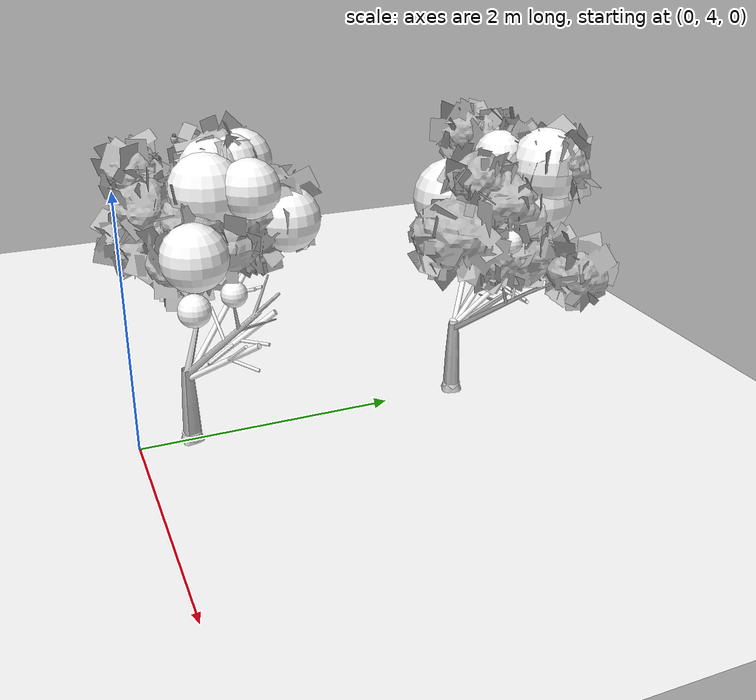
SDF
<sdf version="1.11">
 <world name="peach_orchard">
  <model name="ground">
   <static>true</static>
   <link name="link">
    <visual name="soil">
     <geometry><plane><normal>0 0 1</normal><size>32 22</size></plane></geometry>
     <material>
      <ambient>1 1 1 1</ambient>
      <diffuse>1 1 1 1</diffuse>
      <specular>0.1 0.1 0.1 1</specular>
      <pbr>
       <metal>
        <albedo_map>textures/soil_albedo.png</albedo_map>
        <normal_map type="tangent">textures/soil_normal.png</normal_map>
        <roughness>0.95</roughness>
        <metalness>0</metalness>
       </metal>
      </pbr>
     </material>
    </visual>
    <collision name="c_soil">
     <geometry><plane><normal>0 0 1</normal><size>32 22</size></plane></geometry>
    </collision>
   </link>
  </model>
  <model name="tree_r2_t5">
   <pose>0 4.4 0 0 0 0</pose>
   <static>true</static>
   <link name="link">
    <visual name="tree_mesh">
     <pose>0 0 0 0 0 0.208084</pose>
     <geometry>
      <mesh><uri>model://peach_sim/meshes/peach_tree_b.glb</uri><scale>1.03697 1.03697 1.03697</scale></mesh>
     </geometry>
    </visual>
    <visual name="trunk_0">
     <pose>0 0 0.154275 0 0 0</pose>
     <geometry><cylinder><radius>0.0512341</radius><length>0.308549</length></cylinder></geometry>
     <material>
      <ambient>1 1 1 1</ambient>
      <diffuse>1 1 1 1</diffuse>
      <specular>0.1 0.1 0.1 1</specular>
      <pbr>
       <metal>
        <albedo_map>textures/bark_albedo.png</albedo_map>
        <normal_map type="tangent">textures/bark_normal.png</normal_map>
        <roughness>0.9</roughness>
        <metalness>0</metalness>
       </metal>
      </pbr>
     </material>
    </visual>
    <collision name="c_trunk_0">
     <pose>0 0 0.154275 0 0 0</pose>
     <geometry><cylinder><radius>0.0512341</radius><length>0.308549</length></cylinder></geometry>
    </collision>
    <visual name="trunk_1">
     <pose>0 0 0.434774 0 0 0</pose>
     <geometry><cylinder><radius>0.0368885</radius><length>0.252449</length></cylinder></geometry>
     <material>
      <ambient>1 1 1 1</ambient>
      <diffuse>1 1 1 1</diffuse>
      <specular>0.1 0.1 0.1 1</specular>
      <pbr>
       <metal>
        <albedo_map>textures/bark_albedo.png</albedo_map>
        <normal_map type="tangent">textures/bark_normal.png</normal_map>
        <roughness>0.9</roughness>
        <metalness>0</metalness>
       </metal>
      </pbr>
     </material>
    </visual>
    <collision name="c_trunk_1">
     <pose>0 0 0.434774 0 0 0</pose>
     <geometry><cylinder><radius>0.0368885</radius><length>0.252449</length></cylinder></geometry>
    </collision>
    <visual name="root_flare">
     <pose>0 0 0.035 0 0 0</pose>
     <geometry><cylinder><radius>0.0742894</radius><length>0.07</length></cylinder></geometry>
     <material>
      <ambient>1 1 1 1</ambient>
      <diffuse>1 1 1 1</diffuse>
      <specular>0.1 0.1 0.1 1</specular>
      <pbr>
       <metal>
        <albedo_map>textures/bark_albedo.png</albedo_map>
        <normal_map type="tangent">textures/bark_normal.png</normal_map>
        <roughness>0.95</roughness>
        <metalness>0</metalness>
       </metal>
      </pbr>
     </material>
    </visual>
    <visual name="scaffold_0">
     <pose>0.114899 0.31561 0.784827 0 0.896039 1.22166</pose>
     <geometry><cylinder><radius>0.022</radius><length>0.860268</length></cylinder></geometry>
     <material>
      <ambient>1 1 1 1</ambient>
      <diffuse>1 1 1 1</diffuse>
      <specular>0.1 0.1 0.1 1</specular>
      <pbr>
       <metal>
        <albedo_map>textures/bark_albedo.png</albedo_map>
        <normal_map type="tangent">textures/bark_normal.png</normal_map>
        <roughness>0.9</roughness>
        <metalness>0</metalness>
       </metal>
      </pbr>
     </material>
    </visual>
    <collision name="c_scaffold_0">
     <pose>0.114899 0.31561 0.784827 0 0.896039 1.22166</pose>
     <geometry><cylinder><radius>0.022</radius><length>0.860268</length></cylinder></geometry>
    </collision>
    <visual name="branchlet_0_0">
     <pose>0.245716 0.456043 0.848523 0 1.45494 0.653646</pose>
     <geometry><cylinder><radius>0.012</radius><length>0.280281</length></cylinder></geometry>
     <material>
      <ambient>1 1 1 1</ambient>
      <diffuse>1 1 1 1</diffuse>
      <specular>0.1 0.1 0.1 1</specular>
      <pbr>
       <metal>
        <albedo_map>textures/bark_albedo.png</albedo_map>
        <normal_map type="tangent">textures/bark_normal.png</normal_map>
        <roughness>0.9</roughness>
        <metalness>0</metalness>
       </metal>
      </pbr>
     </material>
    </visual>
    <visual name="branchlet_0_1">
     <pose>-0.00888254 0.264138 0.888353 0 0.75606 -2.91475</pose>
     <geometry><cylinder><radius>0.012</radius><length>0.343103</length></cylinder></geometry>
     <material>
      <ambient>1 1 1 1</ambient>
      <diffuse>1 1 1 1</diffuse>
      <specular>0.1 0.1 0.1 1</specular>
      <pbr>
       <metal>
        <albedo_map>textures/bark_albedo.png</albedo_map>
        <normal_map type="tangent">textures/bark_normal.png</normal_map>
        <roughness>0.9</roughness>
        <metalness>0</metalness>
       </metal>
      </pbr>
     </material>
    </visual>
    <visual name="branchlet_0_2">
     <pose>0.179982 0.23026 0.769166 0 1.86348 -1.1047</pose>
     <geometry><cylinder><radius>0.012</radius><length>0.259291</length></cylinder></geometry>
     <material>
      <ambient>1 1 1 1</ambient>
      <diffuse>1 1 1 1</diffuse>
      <specular>0.1 0.1 0.1 1</specular>
      <pbr>
       <metal>
        <albedo_map>textures/bark_albedo.png</albedo_map>
        <normal_map type="tangent">textures/bark_normal.png</normal_map>
        <roughness>0.9</roughness>
        <metalness>0</metalness>
       </metal>
      </pbr>
     </material>
    </visual>
    <visual name="scaffold_1">
     <pose>0.23358 0.217598 0.719428 0 1.00371 0.74999</pose>
     <geometry><cylinder><radius>0.022</radius><length>0.75695</length></cylinder></geometry>
     <material>
      <ambient>1 1 1 1</ambient>
      <diffuse>1 1 1 1</diffuse>
      <specular>0.1 0.1 0.1 1</specular>
      <pbr>
       <metal>
        <albedo_map>textures/bark_albedo.png</albedo_map>
        <normal_map type="tangent">textures/bark_normal.png</normal_map>
        <roughness>0.9</roughness>
        <metalness>0</metalness>
       </metal>
      </pbr>
     </material>
    </visual>
    <collision name="c_scaffold_1">
     <pose>0.23358 0.217598 0.719428 0 1.00371 0.74999</pose>
     <geometry><cylinder><radius>0.022</radius><length>0.75695</length></cylinder></geometry>
    </collision>
    <visual name="branchlet_1_0">
     <pose>0.37931 0.346648 0.748408 0 1.70031 0.710348</pose>
     <geometry><cylinder><radius>0.012</radius><length>0.249804</length></cylinder></geometry>
     <material>
      <ambient>1 1 1 1</ambient>
      <diffuse>1 1 1 1</diffuse>
      <specular>0.1 0.1 0.1 1</specular>
      <pbr>
       <metal>
        <albedo_map>textures/bark_albedo.png</albedo_map>
        <normal_map type="tangent">textures/bark_normal.png</normal_map>
        <roughness>0.9</roughness>
        <metalness>0</metalness>
       </metal>
      </pbr>
     </material>
    </visual>
    <visual name="branchlet_1_1">
     <pose>0.390476 0.28919 0.8517 0 0.899858 0.318317</pose>
     <geometry><cylinder><radius>0.012</radius><length>0.332998</length></cylinder></geometry>
     <material>
      <ambient>1 1 1 1</ambient>
      <diffuse>1 1 1 1</diffuse>
      <specular>0.1 0.1 0.1 1</specular>
      <pbr>
       <metal>
        <albedo_map>textures/bark_albedo.png</albedo_map>
        <normal_map type="tangent">textures/bark_normal.png</normal_map>
        <roughness>0.9</roughness>
        <metalness>0</metalness>
       </metal>
      </pbr>
     </material>
    </visual>
    <visual name="scaffold_2">
     <pose>-0.181094 0.286132 0.837022 0 0.812261 2.13506</pose>
     <geometry><cylinder><radius>0.022</radius><length>0.93305</length></cylinder></geometry>
     <material>
      <ambient>1 1 1 1</ambient>
      <diffuse>1 1 1 1</diffuse>
      <specular>0.1 0.1 0.1 1</specular>
      <pbr>
       <metal>
        <albedo_map>textures/bark_albedo.png</albedo_map>
        <normal_map type="tangent">textures/bark_normal.png</normal_map>
        <roughness>0.9</roughness>
        <metalness>0</metalness>
       </metal>
      </pbr>
     </material>
    </visual>
    <collision name="c_scaffold_2">
     <pose>-0.181094 0.286132 0.837022 0 0.812261 2.13506</pose>
     <geometry><cylinder><radius>0.022</radius><length>0.93305</length></cylinder></geometry>
    </collision>
    <visual name="branchlet_2_0">
     <pose>-0.217082 0.545462 1.0607 0 1.22594 0.974595</pose>
     <geometry><cylinder><radius>0.012</radius><length>0.250936</length></cylinder></geometry>
     <material>
      <ambient>1 1 1 1</ambient>
      <diffuse>1 1 1 1</diffuse>
      <specular>0.1 0.1 0.1 1</specular>
      <pbr>
       <metal>
        <albedo_map>textures/bark_albedo.png</albedo_map>
        <normal_map type="tangent">textures/bark_normal.png</normal_map>
        <roughness>0.9</roughness>
        <metalness>0</metalness>
       </metal>
      </pbr>
     </material>
    </visual>
    <visual name="branchlet_2_1">
     <pose>-0.2083 0.519792 1.06343 0 1.22884 0.677806</pose>
     <geometry><cylinder><radius>0.012</radius><length>0.21788</length></cylinder></geometry>
     <material>
      <ambient>1 1 1 1</ambient>
      <diffuse>1 1 1 1</diffuse>
      <specular>0.1 0.1 0.1 1</specular>
      <pbr>
       <metal>
        <albedo_map>textures/bark_albedo.png</albedo_map>
        <normal_map type="tangent">textures/bark_normal.png</normal_map>
        <roughness>0.9</roughness>
        <metalness>0</metalness>
       </metal>
      </pbr>
     </material>
    </visual>
    <visual name="canopy_0">
     <pose>-0.0274209 0.432641 2.11822 0 0 0</pose>
     <geometry><sphere><radius>0.195027</radius></sphere></geometry>
     <material>
      <ambient>1 1 1 1</ambient>
      <diffuse>1 1 1 1</diffuse>
      <specular>0.1 0.1 0.1 1</specular>
      <pbr>
       <metal>
        <albedo_map>textures/leaf_albedo.png</albedo_map>
        <normal_map type="tangent">textures/leaf_normal.png</normal_map>
        <roughness>0.85</roughness>
        <metalness>0</metalness>
       </metal>
      </pbr>
     </material>
    </visual>
    <collision name="c_canopy_0">
     <pose>-0.0274209 0.432641 2.11822 0 0 0</pose>
     <geometry><sphere><radius>0.195027</radius></sphere></geometry>
    </collision>
    <visual name="canopy_1">
     <pose>0.47267 0.0269717 1.63754 0 0 0</pose>
     <geometry><sphere><radius>0.232433</radius></sphere></geometry>
     <material>
      <ambient>1 1 1 1</ambient>
      <diffuse>1 1 1 1</diffuse>
      <specular>0.1 0.1 0.1 1</specular>
      <pbr>
       <metal>
        <albedo_map>textures/leaf_albedo.png</albedo_map>
        <normal_map type="tangent">textures/leaf_normal.png</normal_map>
        <roughness>0.85</roughness>
        <metalness>0</metalness>
       </metal>
      </pbr>
     </material>
    </visual>
    <collision name="c_canopy_1">
     <pose>0.47267 0.0269717 1.63754 0 0 0</pose>
     <geometry><sphere><radius>0.232433</radius></sphere></geometry>
    </collision>
    <visual name="canopy_2">
     <pose>-0.131589 0.526864 2.10124 0 0 0</pose>
     <geometry><sphere><radius>0.219924</radius></sphere></geometry>
     <material>
      <ambient>1 1 1 1</ambient>
      <diffuse>1 1 1 1</diffuse>
      <specular>0.1 0.1 0.1 1</specular>
      <pbr>
       <metal>
        <albedo_map>textures/leaf_albedo.png</albedo_map>
        <normal_map type="tangent">textures/leaf_normal.png</normal_map>
        <roughness>0.85</roughness>
        <metalness>0</metalness>
       </metal>
      </pbr>
     </material>
    </visual>
    <collision name="c_canopy_2">
     <pose>-0.131589 0.526864 2.10124 0 0 0</pose>
     <geometry><sphere><radius>0.219924</radius></sphere></geometry>
    </collision>
    <visual name="canopy_3">
     <pose>0.329182 0.461679 2.0199 0 0 0</pose>
     <geometry><sphere><radius>0.206105</radius></sphere></geometry>
     <material>
      <ambient>1 1 1 1</ambient>
      <diffuse>1 1 1 1</diffuse>
      <specular>0.1 0.1 0.1 1</specular>
      <pbr>
       <metal>
        <albedo_map>textures/leaf_albedo.png</albedo_map>
        <normal_map type="tangent">textures/leaf_normal.png</normal_map>
        <roughness>0.85</roughness>
        <metalness>0</metalness>
       </metal>
      </pbr>
     </material>
    </visual>
    <visual name="canopy_4">
     <pose>0.0462458 0.290001 1.81858 0 0 0</pose>
     <geometry><sphere><radius>0.199953</radius></sphere></geometry>
     <material>
      <ambient>1 1 1 1</ambient>
      <diffuse>1 1 1 1</diffuse>
      <specular>0.1 0.1 0.1 1</specular>
      <pbr>
       <metal>
        <albedo_map>textures/leaf_albedo.png</albedo_map>
        <normal_map type="tangent">textures/leaf_normal.png</normal_map>
        <roughness>0.85</roughness>
        <metalness>0</metalness>
       </metal>
      </pbr>
     </material>
    </visual>
    <visual name="canopy_5">
     <pose>-0.27952 0.840801 1.56179 0 0 0</pose>
     <geometry><sphere><radius>0.230705</radius></sphere></geometry>
     <material>
      <ambient>1 1 1 1</ambient>
      <diffuse>1 1 1 1</diffuse>
      <specular>0.1 0.1 0.1 1</specular>
      <pbr>
       <metal>
        <albedo_map>textures/leaf_albedo.png</albedo_map>
        <normal_map type="tangent">textures/leaf_normal.png</normal_map>
        <roughness>0.85</roughness>
        <metalness>0</metalness>
       </metal>
      </pbr>
     </material>
    </visual>
    <visual name="canopy_6">
     <pose>0.0162726 0.266887 2.09601 0 0 0</pose>
     <geometry><sphere><radius>0.216276</radius></sphere></geometry>
     <material>
      <ambient>1 1 1 1</ambient>
      <diffuse>1 1 1 1</diffuse>
      <specular>0.1 0.1 0.1 1</specular>
      <pbr>
       <metal>
        <albedo_map>textures/leaf_albedo.png</albedo_map>
        <normal_map type="tangent">textures/leaf_normal.png</normal_map>
        <roughness>0.85</roughness>
        <metalness>0</metalness>
       </metal>
      </pbr>
     </material>
    </visual>
    <visual name="canopy_7">
     <pose>0.16392 0.200927 1.98785 0 0 0</pose>
     <geometry><sphere><radius>0.26481</radius></sphere></geometry>
     <material>
      <ambient>1 1 1 1</ambient>
      <diffuse>1 1 1 1</diffuse>
      <specular>0.1 0.1 0.1 1</specular>
      <pbr>
       <metal>
        <albedo_map>textures/leaf_albedo.png</albedo_map>
        <normal_map type="tangent">textures/leaf_normal.png</normal_map>
        <roughness>0.85</roughness>
        <metalness>0</metalness>
       </metal>
      </pbr>
     </material>
    </visual>
    <visual name="canopy_8">
     <pose>-0.11533 0.19106 1.68759 0 0 0</pose>
     <geometry><sphere><radius>0.2632</radius></sphere></geometry>
     <material>
      <ambient>1 1 1 1</ambient>
      <diffuse>1 1 1 1</diffuse>
      <specular>0.1 0.1 0.1 1</specular>
      <pbr>
       <metal>
        <albedo_map>textures/leaf_albedo.png</albedo_map>
        <normal_map type="tangent">textures/leaf_normal.png</normal_map>
        <roughness>0.85</roughness>
        <metalness>0</metalness>
       </metal>
      </pbr>
     </material>
    </visual>
    <visual name="canopy_9">
     <pose>0.0852625 0.791341 1.69689 0 0 0</pose>
     <geometry><sphere><radius>0.238227</radius></sphere></geometry>
     <material>
      <ambient>1 1 1 1</ambient>
      <diffuse>1 1 1 1</diffuse>
      <specular>0.1 0.1 0.1 1</specular>
      <pbr>
       <metal>
        <albedo_map>textures/leaf_albedo.png</albedo_map>
        <normal_map type="tangent">textures/leaf_normal.png</normal_map>
        <roughness>0.85</roughness>
        <metalness>0</metalness>
       </metal>
      </pbr>
     </material>
    </visual>
    <visual name="foliage_0">
     <pose>0.247947 0.330712 1.24497 0 0 0</pose>
     <geometry><sphere><radius>0.0950778</radius></sphere></geometry>
     <material>
      <ambient>1 1 1 1</ambient>
      <diffuse>1 1 1 1</diffuse>
      <specular>0.1 0.1 0.1 1</specular>
      <pbr>
       <metal>
        <albedo_map>textures/leaf_albedo.png</albedo_map>
        <normal_map type="tangent">textures/leaf_normal.png</normal_map>
        <roughness>0.85</roughness>
        <metalness>0</metalness>
       </metal>
      </pbr>
     </material>
    </visual>
    <visual name="foliage_4">
     <pose>0.450729 0.00491466 1.25365 0 0 0</pose>
     <geometry><sphere><radius>0.116424</radius></sphere></geometry>
     <material>
      <ambient>1 1 1 1</ambient>
      <diffuse>1 1 1 1</diffuse>
      <specular>0.1 0.1 0.1 1</specular>
      <pbr>
       <metal>
        <albedo_map>textures/leaf_albedo.png</albedo_map>
        <normal_map type="tangent">textures/leaf_normal.png</normal_map>
        <roughness>0.85</roughness>
        <metalness>0</metalness>
       </metal>
      </pbr>
     </material>
    </visual>
    <visual name="twig_0">
     <pose>0.126449 0.249184 1.40485 0 0.637495 -2.8143</pose>
     <geometry><cylinder><radius>0.007</radius><length>0.166353</length></cylinder></geometry>
     <material>
      <ambient>1 1 1 1</ambient>
      <diffuse>1 1 1 1</diffuse>
      <specular>0.1 0.1 0.1 1</specular>
      <pbr>
       <metal>
        <albedo_map>textures/bark_albedo.png</albedo_map>
        <normal_map type="tangent">textures/bark_normal.png</normal_map>
        <roughness>0.9</roughness>
        <metalness>0</metalness>
       </metal>
      </pbr>
     </material>
    </visual>
    <visual name="twig_1">
     <pose>0.202006 0.107373 1.36732 0 0.635153 -2.89856</pose>
     <geometry><cylinder><radius>0.007</radius><length>0.100088</length></cylinder></geometry>
     <material>
      <ambient>1 1 1 1</ambient>
      <diffuse>1 1 1 1</diffuse>
      <specular>0.1 0.1 0.1 1</specular>
      <pbr>
       <metal>
        <albedo_map>textures/bark_albedo.png</albedo_map>
        <normal_map type="tangent">textures/bark_normal.png</normal_map>
        <roughness>0.9</roughness>
        <metalness>0</metalness>
       </metal>
      </pbr>
     </material>
    </visual>
    <visual name="twig_2">
     <pose>0.23357 -0.0963259 1.37502 0 0.385099 -2.20176</pose>
     <geometry><cylinder><radius>0.007</radius><length>0.114922</length></cylinder></geometry>
     <material>
      <ambient>1 1 1 1</ambient>
      <diffuse>1 1 1 1</diffuse>
      <specular>0.1 0.1 0.1 1</specular>
      <pbr>
       <metal>
        <albedo_map>textures/bark_albedo.png</albedo_map>
        <normal_map type="tangent">textures/bark_normal.png</normal_map>
        <roughness>0.9</roughness>
        <metalness>0</metalness>
       </metal>
      </pbr>
     </material>
    </visual>
    <visual name="twig_3">
     <pose>0.201636 -0.144489 1.3878 0 0.292648 3.09971</pose>
     <geometry><cylinder><radius>0.007</radius><length>0.116053</length></cylinder></geometry>
     <material>
      <ambient>1 1 1 1</ambient>
      <diffuse>1 1 1 1</diffuse>
      <specular>0.1 0.1 0.1 1</specular>
      <pbr>
       <metal>
        <albedo_map>textures/bark_albedo.png</albedo_map>
        <normal_map type="tangent">textures/bark_normal.png</normal_map>
        <roughness>0.9</roughness>
        <metalness>0</metalness>
       </metal>
      </pbr>
     </material>
    </visual>
    <visual name="twig_4">
     <pose>0.357439 -0.015303 1.47069 0 0.273678 2.54167</pose>
     <geometry><cylinder><radius>0.007</radius><length>0.175452</length></cylinder></geometry>
     <material>
      <ambient>1 1 1 1</ambient>
      <diffuse>1 1 1 1</diffuse>
      <specular>0.1 0.1 0.1 1</specular>
      <pbr>
       <metal>
        <albedo_map>textures/bark_albedo.png</albedo_map>
        <normal_map type="tangent">textures/bark_normal.png</normal_map>
        <roughness>0.9</roughness>
        <metalness>0</metalness>
       </metal>
      </pbr>
     </material>
    </visual>
    <visual name="twig_5">
     <pose>0.198673 0.221378 1.44731 0 0.571245 3.06546</pose>
     <geometry><cylinder><radius>0.007</radius><length>0.212277</length></cylinder></geometry>
     <material>
      <ambient>1 1 1 1</ambient>
      <diffuse>1 1 1 1</diffuse>
      <specular>0.1 0.1 0.1 1</specular>
      <pbr>
       <metal>
        <albedo_map>textures/bark_albedo.png</albedo_map>
        <normal_map type="tangent">textures/bark_normal.png</normal_map>
        <roughness>0.9</roughness>
        <metalness>0</metalness>
       </metal>
      </pbr>
     </material>
    </visual>
    <visual name="twig_6">
     <pose>0.198344 0.302549 1.43005 0 0.481596 -2.42135</pose>
     <geometry><cylinder><radius>0.007</radius><length>0.130297</length></cylinder></geometry>
     <material>
      <ambient>1 1 1 1</ambient>
      <diffuse>1 1 1 1</diffuse>
      <specular>0.1 0.1 0.1 1</specular>
      <pbr>
       <metal>
        <albedo_map>textures/bark_albedo.png</albedo_map>
        <normal_map type="tangent">textures/bark_normal.png</normal_map>
        <roughness>0.9</roughness>
        <metalness>0</metalness>
       </metal>
      </pbr>
     </material>
    </visual>
   </link>
  </model>
  <model name="tree_r2_t6">
   <pose>0 6.6 0 0 0 0</pose>
   <static>true</static>
   <link name="link">
    <visual name="tree_mesh">
     <pose>0 0 0 0 0 -0.307098</pose>
     <geometry>
      <mesh><uri>model://peach_sim/meshes/peach_tree_a.glb</uri><scale>1.04202 1.04202 1.04202</scale></mesh>
     </geometry>
    </visual>
    <visual name="trunk_0">
     <pose>0 0 0.173754 0 0 0</pose>
     <geometry><cylinder><radius>0.0484618</radius><length>0.347507</length></cylinder></geometry>
     <material>
      <ambient>1 1 1 1</ambient>
      <diffuse>1 1 1 1</diffuse>
      <specular>0.1 0.1 0.1 1</specular>
      <pbr>
       <metal>
        <albedo_map>textures/bark_albedo.png</albedo_map>
        <normal_map type="tangent">textures/bark_normal.png</normal_map>
        <roughness>0.9</roughness>
        <metalness>0</metalness>
       </metal>
      </pbr>
     </material>
    </visual>
    <collision name="c_trunk_0">
     <pose>0 0 0.173754 0 0 0</pose>
     <geometry><cylinder><radius>0.0484618</radius><length>0.347507</length></cylinder></geometry>
    </collision>
    <visual name="trunk_1">
     <pose>0 0 0.489669 0 0 0</pose>
     <geometry><cylinder><radius>0.0348925</radius><length>0.284324</length></cylinder></geometry>
     <material>
      <ambient>1 1 1 1</ambient>
      <diffuse>1 1 1 1</diffuse>
      <specular>0.1 0.1 0.1 1</specular>
      <pbr>
       <metal>
        <albedo_map>textures/bark_albedo.png</albedo_map>
        <normal_map type="tangent">textures/bark_normal.png</normal_map>
        <roughness>0.9</roughness>
        <metalness>0</metalness>
       </metal>
      </pbr>
     </material>
    </visual>
    <collision name="c_trunk_1">
     <pose>0 0 0.489669 0 0 0</pose>
     <geometry><cylinder><radius>0.0348925</radius><length>0.284324</length></cylinder></geometry>
    </collision>
    <visual name="root_flare">
     <pose>0 0 0.035 0 0 0</pose>
     <geometry><cylinder><radius>0.0702696</radius><length>0.07</length></cylinder></geometry>
     <material>
      <ambient>1 1 1 1</ambient>
      <diffuse>1 1 1 1</diffuse>
      <specular>0.1 0.1 0.1 1</specular>
      <pbr>
       <metal>
        <albedo_map>textures/bark_albedo.png</albedo_map>
        <normal_map type="tangent">textures/bark_normal.png</normal_map>
        <roughness>0.95</roughness>
        <metalness>0</metalness>
       </metal>
      </pbr>
     </material>
    </visual>
    <visual name="scaffold_0">
     <pose>-0.120276 0.295487 0.854125 0 0.863278 1.95736</pose>
     <geometry><cylinder><radius>0.022</radius><length>0.839573</length></cylinder></geometry>
     <material>
      <ambient>1 1 1 1</ambient>
      <diffuse>1 1 1 1</diffuse>
      <specular>0.1 0.1 0.1 1</specular>
      <pbr>
       <metal>
        <albedo_map>textures/bark_albedo.png</albedo_map>
        <normal_map type="tangent">textures/bark_normal.png</normal_map>
        <roughness>0.9</roughness>
        <metalness>0</metalness>
       </metal>
      </pbr>
     </material>
    </visual>
    <collision name="c_scaffold_0">
     <pose>-0.120276 0.295487 0.854125 0 0.863278 1.95736</pose>
     <geometry><cylinder><radius>0.022</radius><length>0.839573</length></cylinder></geometry>
    </collision>
    <visual name="branchlet_0_0">
     <pose>-0.171808 0.612894 1.10115 0 1.07069 1.36503</pose>
     <geometry><cylinder><radius>0.012</radius><length>0.293666</length></cylinder></geometry>
     <material>
      <ambient>1 1 1 1</ambient>
      <diffuse>1 1 1 1</diffuse>
      <specular>0.1 0.1 0.1 1</specular>
      <pbr>
       <metal>
        <albedo_map>textures/bark_albedo.png</albedo_map>
        <normal_map type="tangent">textures/bark_normal.png</normal_map>
        <roughness>0.9</roughness>
        <metalness>0</metalness>
       </metal>
      </pbr>
     </material>
    </visual>
    <visual name="branchlet_0_1">
     <pose>-0.098358 0.352078 1.04499 0 0.433324 -0.346137</pose>
     <geometry><cylinder><radius>0.012</radius><length>0.266785</length></cylinder></geometry>
     <material>
      <ambient>1 1 1 1</ambient>
      <diffuse>1 1 1 1</diffuse>
      <specular>0.1 0.1 0.1 1</specular>
      <pbr>
       <metal>
        <albedo_map>textures/bark_albedo.png</albedo_map>
        <normal_map type="tangent">textures/bark_normal.png</normal_map>
        <roughness>0.9</roughness>
        <metalness>0</metalness>
       </metal>
      </pbr>
     </material>
    </visual>
    <visual name="branchlet_0_2">
     <pose>-0.186533 0.542654 0.945151 0 1.57446 1.74397</pose>
     <geometry><cylinder><radius>0.012</radius><length>0.300474</length></cylinder></geometry>
     <material>
      <ambient>1 1 1 1</ambient>
      <diffuse>1 1 1 1</diffuse>
      <specular>0.1 0.1 0.1 1</specular>
      <pbr>
       <metal>
        <albedo_map>textures/bark_albedo.png</albedo_map>
        <normal_map type="tangent">textures/bark_normal.png</normal_map>
        <roughness>0.9</roughness>
        <metalness>0</metalness>
       </metal>
      </pbr>
     </material>
    </visual>
    <visual name="scaffold_1">
     <pose>0.0573138 0.234608 0.811188 0 0.81001 1.33119</pose>
     <geometry><cylinder><radius>0.022</radius><length>0.666877</length></cylinder></geometry>
     <material>
      <ambient>1 1 1 1</ambient>
      <diffuse>1 1 1 1</diffuse>
      <specular>0.1 0.1 0.1 1</specular>
      <pbr>
       <metal>
        <albedo_map>textures/bark_albedo.png</albedo_map>
        <normal_map type="tangent">textures/bark_normal.png</normal_map>
        <roughness>0.9</roughness>
        <metalness>0</metalness>
       </metal>
      </pbr>
     </material>
    </visual>
    <collision name="c_scaffold_1">
     <pose>0.0573138 0.234608 0.811188 0 0.81001 1.33119</pose>
     <geometry><cylinder><radius>0.022</radius><length>0.666877</length></cylinder></geometry>
    </collision>
    <visual name="branchlet_1_0">
     <pose>0.244146 0.393103 0.915841 0 1.71044 0.185026</pose>
     <geometry><cylinder><radius>0.012</radius><length>0.318914</length></cylinder></geometry>
     <material>
      <ambient>1 1 1 1</ambient>
      <diffuse>1 1 1 1</diffuse>
      <specular>0.1 0.1 0.1 1</specular>
      <pbr>
       <metal>
        <albedo_map>textures/bark_albedo.png</albedo_map>
        <normal_map type="tangent">textures/bark_normal.png</normal_map>
        <roughness>0.9</roughness>
        <metalness>0</metalness>
       </metal>
      </pbr>
     </material>
    </visual>
    <visual name="branchlet_1_1">
     <pose>0.177051 0.429813 0.858499 0 1.92955 0.785372</pose>
     <geometry><cylinder><radius>0.012</radius><length>0.287987</length></cylinder></geometry>
     <material>
      <ambient>1 1 1 1</ambient>
      <diffuse>1 1 1 1</diffuse>
      <specular>0.1 0.1 0.1 1</specular>
      <pbr>
       <metal>
        <albedo_map>textures/bark_albedo.png</albedo_map>
        <normal_map type="tangent">textures/bark_normal.png</normal_map>
        <roughness>0.9</roughness>
        <metalness>0</metalness>
       </metal>
      </pbr>
     </material>
    </visual>
    <visual name="scaffold_2">
     <pose>-0.299681 0.225238 0.80668 0 1.02947 2.49707</pose>
     <geometry><cylinder><radius>0.022</radius><length>0.874857</length></cylinder></geometry>
     <material>
      <ambient>1 1 1 1</ambient>
      <diffuse>1 1 1 1</diffuse>
      <specular>0.1 0.1 0.1 1</specular>
      <pbr>
       <metal>
        <albedo_map>textures/bark_albedo.png</albedo_map>
        <normal_map type="tangent">textures/bark_normal.png</normal_map>
        <roughness>0.9</roughness>
        <metalness>0</metalness>
       </metal>
      </pbr>
     </material>
    </visual>
    <collision name="c_scaffold_2">
     <pose>-0.299681 0.225238 0.80668 0 1.02947 2.49707</pose>
     <geometry><cylinder><radius>0.022</radius><length>0.874857</length></cylinder></geometry>
    </collision>
    <visual name="branchlet_2_0">
     <pose>-0.327984 0.18594 0.966452 0 0.838958 -1.09422</pose>
     <geometry><cylinder><radius>0.012</radius><length>0.299452</length></cylinder></geometry>
     <material>
      <ambient>1 1 1 1</ambient>
      <diffuse>1 1 1 1</diffuse>
      <specular>0.1 0.1 0.1 1</specular>
      <pbr>
       <metal>
        <albedo_map>textures/bark_albedo.png</albedo_map>
        <normal_map type="tangent">textures/bark_normal.png</normal_map>
        <roughness>0.9</roughness>
        <metalness>0</metalness>
       </metal>
      </pbr>
     </material>
    </visual>
    <visual name="branchlet_2_1">
     <pose>-0.34385 0.372293 1.00826 0 0.619938 0.931284</pose>
     <geometry><cylinder><radius>0.012</radius><length>0.313325</length></cylinder></geometry>
     <material>
      <ambient>1 1 1 1</ambient>
      <diffuse>1 1 1 1</diffuse>
      <specular>0.1 0.1 0.1 1</specular>
      <pbr>
       <metal>
        <albedo_map>textures/bark_albedo.png</albedo_map>
        <normal_map type="tangent">textures/bark_normal.png</normal_map>
        <roughness>0.9</roughness>
        <metalness>0</metalness>
       </metal>
      </pbr>
     </material>
    </visual>
    <visual name="canopy_0">
     <pose>0.0541065 0.284394 1.66822 0 0 0</pose>
     <geometry><sphere><radius>0.215462</radius></sphere></geometry>
     <material>
      <ambient>1 1 1 1</ambient>
      <diffuse>1 1 1 1</diffuse>
      <specular>0.1 0.1 0.1 1</specular>
      <pbr>
       <metal>
        <albedo_map>textures/leaf_albedo.png</albedo_map>
        <normal_map type="tangent">textures/leaf_normal.png</normal_map>
        <roughness>0.85</roughness>
        <metalness>0</metalness>
       </metal>
      </pbr>
     </material>
    </visual>
    <collision name="c_canopy_0">
     <pose>0.0541065 0.284394 1.66822 0 0 0</pose>
     <geometry><sphere><radius>0.215462</radius></sphere></geometry>
    </collision>
    <visual name="canopy_1">
     <pose>0.0849106 0.606406 1.61988 0 0 0</pose>
     <geometry><sphere><radius>0.319265</radius></sphere></geometry>
     <material>
      <ambient>1 1 1 1</ambient>
      <diffuse>1 1 1 1</diffuse>
      <specular>0.1 0.1 0.1 1</specular>
      <pbr>
       <metal>
        <albedo_map>textures/leaf_albedo.png</albedo_map>
        <normal_map type="tangent">textures/leaf_normal.png</normal_map>
        <roughness>0.85</roughness>
        <metalness>0</metalness>
       </metal>
      </pbr>
     </material>
    </visual>
    <collision name="c_canopy_1">
     <pose>0.0849106 0.606406 1.61988 0 0 0</pose>
     <geometry><sphere><radius>0.319265</radius></sphere></geometry>
    </collision>
    <visual name="canopy_2">
     <pose>-0.326811 0.561921 1.62747 0 0 0</pose>
     <geometry><sphere><radius>0.191281</radius></sphere></geometry>
     <material>
      <ambient>1 1 1 1</ambient>
      <diffuse>1 1 1 1</diffuse>
      <specular>0.1 0.1 0.1 1</specular>
      <pbr>
       <metal>
        <albedo_map>textures/leaf_albedo.png</albedo_map>
        <normal_map type="tangent">textures/leaf_normal.png</normal_map>
        <roughness>0.85</roughness>
        <metalness>0</metalness>
       </metal>
      </pbr>
     </material>
    </visual>
    <collision name="c_canopy_2">
     <pose>-0.326811 0.561921 1.62747 0 0 0</pose>
     <geometry><sphere><radius>0.191281</radius></sphere></geometry>
    </collision>
    <visual name="canopy_3">
     <pose>-0.0150697 0.346977 1.96221 0 0 0</pose>
     <geometry><sphere><radius>0.197098</radius></sphere></geometry>
     <material>
      <ambient>1 1 1 1</ambient>
      <diffuse>1 1 1 1</diffuse>
      <specular>0.1 0.1 0.1 1</specular>
      <pbr>
       <metal>
        <albedo_map>textures/leaf_albedo.png</albedo_map>
        <normal_map type="tangent">textures/leaf_normal.png</normal_map>
        <roughness>0.85</roughness>
        <metalness>0</metalness>
       </metal>
      </pbr>
     </material>
    </visual>
    <visual name="canopy_4">
     <pose>0.188737 0.648792 1.90034 0 0 0</pose>
     <geometry><sphere><radius>0.294619</radius></sphere></geometry>
     <material>
      <ambient>1 1 1 1</ambient>
      <diffuse>1 1 1 1</diffuse>
      <specular>0.1 0.1 0.1 1</specular>
      <pbr>
       <metal>
        <albedo_map>textures/leaf_albedo.png</albedo_map>
        <normal_map type="tangent">textures/leaf_normal.png</normal_map>
        <roughness>0.85</roughness>
        <metalness>0</metalness>
       </metal>
      </pbr>
     </material>
    </visual>
    <visual name="canopy_5">
     <pose>-0.263316 0.447382 1.85577 0 0 0</pose>
     <geometry><sphere><radius>0.183454</radius></sphere></geometry>
     <material>
      <ambient>1 1 1 1</ambient>
      <diffuse>1 1 1 1</diffuse>
      <specular>0.1 0.1 0.1 1</specular>
      <pbr>
       <metal>
        <albedo_map>textures/leaf_albedo.png</albedo_map>
        <normal_map type="tangent">textures/leaf_normal.png</normal_map>
        <roughness>0.85</roughness>
        <metalness>0</metalness>
       </metal>
      </pbr>
     </material>
    </visual>
    <visual name="canopy_6">
     <pose>-0.337427 0.112888 1.56778 0 0 0</pose>
     <geometry><sphere><radius>0.313699</radius></sphere></geometry>
     <material>
      <ambient>1 1 1 1</ambient>
      <diffuse>1 1 1 1</diffuse>
      <specular>0.1 0.1 0.1 1</specular>
      <pbr>
       <metal>
        <albedo_map>textures/leaf_albedo.png</albedo_map>
        <normal_map type="tangent">textures/leaf_normal.png</normal_map>
        <roughness>0.85</roughness>
        <metalness>0</metalness>
       </metal>
      </pbr>
     </material>
    </visual>
    <visual name="canopy_7">
     <pose>0.163491 0.450813 1.56952 0 0 0</pose>
     <geometry><sphere><radius>0.253461</radius></sphere></geometry>
     <material>
      <ambient>1 1 1 1</ambient>
      <diffuse>1 1 1 1</diffuse>
      <specular>0.1 0.1 0.1 1</specular>
      <pbr>
       <metal>
        <albedo_map>textures/leaf_albedo.png</albedo_map>
        <normal_map type="tangent">textures/leaf_normal.png</normal_map>
        <roughness>0.85</roughness>
        <metalness>0</metalness>
       </metal>
      </pbr>
     </material>
    </visual>
    <visual name="foliage_0">
     <pose>0.247316 -0.318095 1.43637 0 0 0</pose>
     <geometry><sphere><radius>0.0930261</radius></sphere></geometry>
     <material>
      <ambient>1 1 1 1</ambient>
      <diffuse>1 1 1 1</diffuse>
      <specular>0.1 0.1 0.1 1</specular>
      <pbr>
       <metal>
        <albedo_map>textures/leaf_albedo.png</albedo_map>
        <normal_map type="tangent">textures/leaf_normal.png</normal_map>
        <roughness>0.85</roughness>
        <metalness>0</metalness>
       </metal>
      </pbr>
     </material>
    </visual>
    <visual name="foliage_4">
     <pose>0.313005 0.292908 1.37019 0 0 0</pose>
     <geometry><sphere><radius>0.0990018</radius></sphere></geometry>
     <material>
      <ambient>1 1 1 1</ambient>
      <diffuse>1 1 1 1</diffuse>
      <specular>0.1 0.1 0.1 1</specular>
      <pbr>
       <metal>
        <albedo_map>textures/leaf_albedo.png</albedo_map>
        <normal_map type="tangent">textures/leaf_normal.png</normal_map>
        <roughness>0.85</roughness>
        <metalness>0</metalness>
       </metal>
      </pbr>
     </material>
    </visual>
    <visual name="foliage_8">
     <pose>0.198245 0.0128725 1.48723 0 0 0</pose>
     <geometry><sphere><radius>0.122336</radius></sphere></geometry>
     <material>
      <ambient>1 1 1 1</ambient>
      <diffuse>1 1 1 1</diffuse>
      <specular>0.1 0.1 0.1 1</specular>
      <pbr>
       <metal>
        <albedo_map>textures/leaf_albedo.png</albedo_map>
        <normal_map type="tangent">textures/leaf_normal.png</normal_map>
        <roughness>0.85</roughness>
        <metalness>0</metalness>
       </metal>
      </pbr>
     </material>
    </visual>
    <visual name="twig_0">
     <pose>0.247323 -0.285181 1.55036 0 0.562444 -2.97577</pose>
     <geometry><cylinder><radius>0.007</radius><length>0.188378</length></cylinder></geometry>
     <material>
      <ambient>1 1 1 1</ambient>
      <diffuse>1 1 1 1</diffuse>
      <specular>0.1 0.1 0.1 1</specular>
      <pbr>
       <metal>
        <albedo_map>textures/bark_albedo.png</albedo_map>
        <normal_map type="tangent">textures/bark_normal.png</normal_map>
        <roughness>0.9</roughness>
        <metalness>0</metalness>
       </metal>
      </pbr>
     </material>
    </visual>
    <visual name="twig_1">
     <pose>0.263423 -0.177933 1.5773 0 0.707876 -2.87167</pose>
     <geometry><cylinder><radius>0.007</radius><length>0.212175</length></cylinder></geometry>
     <material>
      <ambient>1 1 1 1</ambient>
      <diffuse>1 1 1 1</diffuse>
      <specular>0.1 0.1 0.1 1</specular>
      <pbr>
       <metal>
        <albedo_map>textures/bark_albedo.png</albedo_map>
        <normal_map type="tangent">textures/bark_normal.png</normal_map>
        <roughness>0.9</roughness>
        <metalness>0</metalness>
       </metal>
      </pbr>
     </material>
    </visual>
    <visual name="twig_2">
     <pose>0.268791 -0.0395617 1.56834 0 0.699946 2.89112</pose>
     <geometry><cylinder><radius>0.007</radius><length>0.169539</length></cylinder></geometry>
     <material>
      <ambient>1 1 1 1</ambient>
      <diffuse>1 1 1 1</diffuse>
      <specular>0.1 0.1 0.1 1</specular>
      <pbr>
       <metal>
        <albedo_map>textures/bark_albedo.png</albedo_map>
        <normal_map type="tangent">textures/bark_normal.png</normal_map>
        <roughness>0.9</roughness>
        <metalness>0</metalness>
       </metal>
      </pbr>
     </material>
    </visual>
    <visual name="twig_3">
     <pose>0.364787 0.0676288 1.56453 0 0.211932 2.20758</pose>
     <geometry><cylinder><radius>0.007</radius><length>0.101782</length></cylinder></geometry>
     <material>
      <ambient>1 1 1 1</ambient>
      <diffuse>1 1 1 1</diffuse>
      <specular>0.1 0.1 0.1 1</specular>
      <pbr>
       <metal>
        <albedo_map>textures/bark_albedo.png</albedo_map>
        <normal_map type="tangent">textures/bark_normal.png</normal_map>
        <roughness>0.9</roughness>
        <metalness>0</metalness>
       </metal>
      </pbr>
     </material>
    </visual>
    <visual name="twig_4">
     <pose>0.3876 0.205506 1.57711 0 0.398892 -3.03725</pose>
     <geometry><cylinder><radius>0.007</radius><length>0.134576</length></cylinder></geometry>
     <material>
      <ambient>1 1 1 1</ambient>
      <diffuse>1 1 1 1</diffuse>
      <specular>0.1 0.1 0.1 1</specular>
      <pbr>
       <metal>
        <albedo_map>textures/bark_albedo.png</albedo_map>
        <normal_map type="tangent">textures/bark_normal.png</normal_map>
        <roughness>0.9</roughness>
        <metalness>0</metalness>
       </metal>
      </pbr>
     </material>
    </visual>
    <visual name="twig_5">
     <pose>0.367765 0.282117 1.5625 0 0.505127 2.5263</pose>
     <geometry><cylinder><radius>0.007</radius><length>0.128227</length></cylinder></geometry>
     <material>
      <ambient>1 1 1 1</ambient>
      <diffuse>1 1 1 1</diffuse>
      <specular>0.1 0.1 0.1 1</specular>
      <pbr>
       <metal>
        <albedo_map>textures/bark_albedo.png</albedo_map>
        <normal_map type="tangent">textures/bark_normal.png</normal_map>
        <roughness>0.9</roughness>
        <metalness>0</metalness>
       </metal>
      </pbr>
     </material>
    </visual>
    <visual name="twig_6">
     <pose>0.206886 0.120495 1.62231 0 0.222143 2.97371</pose>
     <geometry><cylinder><radius>0.007</radius><length>0.205117</length></cylinder></geometry>
     <material>
      <ambient>1 1 1 1</ambient>
      <diffuse>1 1 1 1</diffuse>
      <specular>0.1 0.1 0.1 1</specular>
      <pbr>
       <metal>
        <albedo_map>textures/bark_albedo.png</albedo_map>
        <normal_map type="tangent">textures/bark_normal.png</normal_map>
        <roughness>0.9</roughness>
        <metalness>0</metalness>
       </metal>
      </pbr>
     </material>
    </visual>
    <visual name="twig_7">
     <pose>0.188918 -0.0362574 1.57972 0 0.505342 -2.71576</pose>
     <geometry><cylinder><radius>0.007</radius><length>0.14652</length></cylinder></geometry>
     <material>
      <ambient>1 1 1 1</ambient>
      <diffuse>1 1 1 1</diffuse>
      <specular>0.1 0.1 0.1 1</specular>
      <pbr>
       <metal>
        <albedo_map>textures/bark_albedo.png</albedo_map>
        <normal_map type="tangent">textures/bark_normal.png</normal_map>
        <roughness>0.9</roughness>
        <metalness>0</metalness>
       </metal>
      </pbr>
     </material>
    </visual>
    <visual name="twig_8">
     <pose>0.154779 -0.077802 1.57871 0 0.714254 -2.80373</pose>
     <geometry><cylinder><radius>0.007</radius><length>0.154381</length></cylinder></geometry>
     <material>
      <ambient>1 1 1 1</ambient>
      <diffuse>1 1 1 1</diffuse>
      <specular>0.1 0.1 0.1 1</specular>
      <pbr>
       <metal>
        <albedo_map>textures/bark_albedo.png</albedo_map>
        <normal_map type="tangent">textures/bark_normal.png</normal_map>
        <roughness>0.9</roughness>
        <metalness>0</metalness>
       </metal>
      </pbr>
     </material>
    </visual>
    <visual name="twig_9">
     <pose>0.188932 -0.1229 1.58274 0 0.697364 3.12769</pose>
     <geometry><cylinder><radius>0.007</radius><length>0.160782</length></cylinder></geometry>
     <material>
      <ambient>1 1 1 1</ambient>
      <diffuse>1 1 1 1</diffuse>
      <specular>0.1 0.1 0.1 1</specular>
      <pbr>
       <metal>
        <albedo_map>textures/bark_albedo.png</albedo_map>
        <normal_map type="tangent">textures/bark_normal.png</normal_map>
        <roughness>0.9</roughness>
        <metalness>0</metalness>
       </metal>
      </pbr>
     </material>
    </visual>
    <visual name="twig_10">
     <pose>0.191503 -0.247001 1.59677 0 0.395683 2.81982</pose>
     <geometry><cylinder><radius>0.007</radius><length>0.166749</length></cylinder></geometry>
     <material>
      <ambient>1 1 1 1</ambient>
      <diffuse>1 1 1 1</diffuse>
      <specular>0.1 0.1 0.1 1</specular>
      <pbr>
       <metal>
        <albedo_map>textures/bark_albedo.png</albedo_map>
        <normal_map type="tangent">textures/bark_normal.png</normal_map>
        <roughness>0.9</roughness>
        <metalness>0</metalness>
       </metal>
      </pbr>
     </material>
    </visual>
   </link>
  </model>
  <model name="peach_tree_r1_t5_05">
   <pose>-3.458 5.07709 1.45 0 0.0668993 -0.182864</pose>
   <static>true</static>
   <link name="bag">
    <visual name="bag_mesh">
     <pose>0 0 0.0468961 0 0 -0</pose>
     <geometry>
      <mesh><uri>model://peach_sim/meshes/bagged_peach.glb</uri><scale>0.916432 1.0778 1.06582</scale></mesh>
     </geometry>
    </visual>
    <visual name="body">
     <pose>0 0 0.0288961 0 0 0</pose>
     <geometry><ellipsoid><radii>0.0343662 0.0280228 0.0312078</radii></ellipsoid></geometry>
     <material>
      <ambient>1 1 1 1</ambient>
      <diffuse>1 1 1 1</diffuse>
      <specular>0.1 0.1 0.1 1</specular>
      <pbr>
       <metal>
        <albedo_map>textures/paper_bag_albedo.png</albedo_map>
        <normal_map type="tangent">textures/paper_bag_normal.png</normal_map>
        <roughness>0.72</roughness>
        <metalness>0</metalness>
       </metal>
      </pbr>
     </material>
    </visual>
    <visual name="bottom_fold">
     <pose>0 0 0.012 0 0 0.35</pose>
     <geometry><box><size>0.0532676 0.0322262 0.022</size></box></geometry>
     <material>
      <ambient>1 1 1 1</ambient>
      <diffuse>1 1 1 1</diffuse>
      <specular>0.1 0.1 0.1 1</specular>
      <pbr>
       <metal>
        <albedo_map>textures/paper_bag_albedo.png</albedo_map>
        <normal_map type="tangent">textures/paper_bag_normal.png</normal_map>
        <roughness>0.8</roughness>
        <metalness>0</metalness>
       </metal>
      </pbr>
     </material>
    </visual>
    <visual name="fruit">
     <pose>0 0 0.0190536 0 0 0</pose>
     <geometry><sphere><radius>0.0260558</radius></sphere></geometry>
     <material>
      <ambient>1 1 1 1</ambient>
      <diffuse>1 1 1 1</diffuse>
      <specular>0.1 0.1 0.1 1</specular>
      <pbr>
       <metal>
        <albedo_map>textures/fruit_skin_albedo.png</albedo_map>
        <normal_map type="tangent">textures/fruit_skin_normal.png</normal_map>
        <roughness>0.55</roughness>
        <metalness>0</metalness>
       </metal>
      </pbr>
     </material>
    </visual>
    <visual name="neck">
     <pose>0 0 0.0667922 0 0 0</pose>
     <geometry><cylinder><radius>0.013</radius><length>0.018</length></cylinder></geometry>
     <material>
      <ambient>1 1 1 1</ambient>
      <diffuse>1 1 1 1</diffuse>
      <specular>0.1 0.1 0.1 1</specular>
      <pbr>
       <metal>
        <albedo_map>textures/paper_bag_albedo.png</albedo_map>
        <normal_map type="tangent">textures/paper_bag_normal.png</normal_map>
        <roughness>0.75</roughness>
        <metalness>0</metalness>
       </metal>
      </pbr>
     </material>
    </visual>
    <visual name="gather">
     <pose>0 0 0.0477922 0 0 0</pose>
     <geometry><cylinder><radius>0.019</radius><length>0.02</length></cylinder></geometry>
     <material>
      <ambient>1 1 1 1</ambient>
      <diffuse>1 1 1 1</diffuse>
      <specular>0.1 0.1 0.1 1</specular>
      <pbr>
       <metal>
        <albedo_map>textures/paper_bag_albedo.png</albedo_map>
        <normal_map type="tangent">textures/paper_bag_normal.png</normal_map>
        <roughness>0.8</roughness>
        <metalness>0</metalness>
       </metal>
      </pbr>
     </material>
    </visual>
    <visual name="inner_paper">
     <pose>0 0 0.0717922 0 0 0</pose>
     <geometry><cylinder><radius>0.01</radius><length>0.008</length></cylinder></geometry>
     <material>
      <ambient>0.180392 0.14902 0.133333 1</ambient>
      <diffuse>0.180392 0.14902 0.133333 1</diffuse>
      <specular>0.1 0.1 0.1 1</specular>
     </material>
    </visual>
    <visual name="wire_0">
     <pose>0 0 0.0617922 0 0 0</pose>
     <geometry><cylinder><radius>0.0205</radius><length>0.0035</length></cylinder></geometry>
     <material>
      <ambient>0.25 0.25 0.25 1</ambient>
      <diffuse>0.25 0.25 0.25 1</diffuse>
      <specular>0.1 0.1 0.1 1</specular>
     </material>
    </visual>
    <visual name="wire_1">
     <pose>0 0 0.0687922 0 0 0</pose>
     <geometry><cylinder><radius>0.0205</radius><length>0.0035</length></cylinder></geometry>
     <material>
      <ambient>0.25 0.25 0.25 1</ambient>
      <diffuse>0.25 0.25 0.25 1</diffuse>
      <specular>0.1 0.1 0.1 1</specular>
     </material>
    </visual>
    <visual name="wire_tail">
     <pose>0.01 0 0.0697922 0 0.521618 0</pose>
     <geometry><cylinder><radius>0.0012</radius><length>0.026</length></cylinder></geometry>
     <material>
      <ambient>0.25 0.25 0.25 1</ambient>
      <diffuse>0.25 0.25 0.25 1</diffuse>
      <specular>0.1 0.1 0.1 1</specular>
     </material>
    </visual>
    <collision name="c_body">
     <pose>0 0 0.0288961 0 0 0</pose>
     <geometry><cylinder><radius>0.0343662</radius><length>0.0577922</length></cylinder></geometry>
    </collision>
   </link>
  </model>
 </world>
</sdf>
